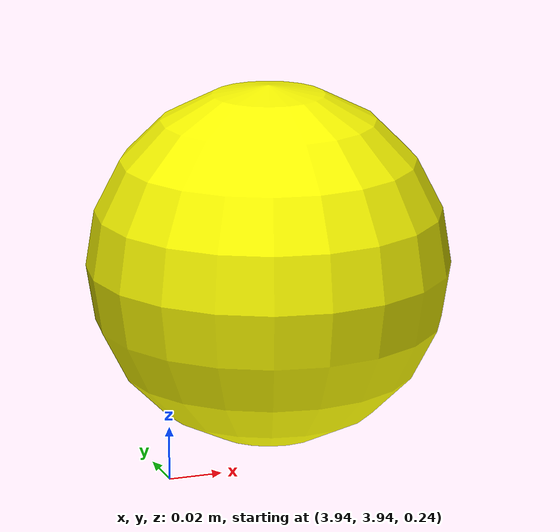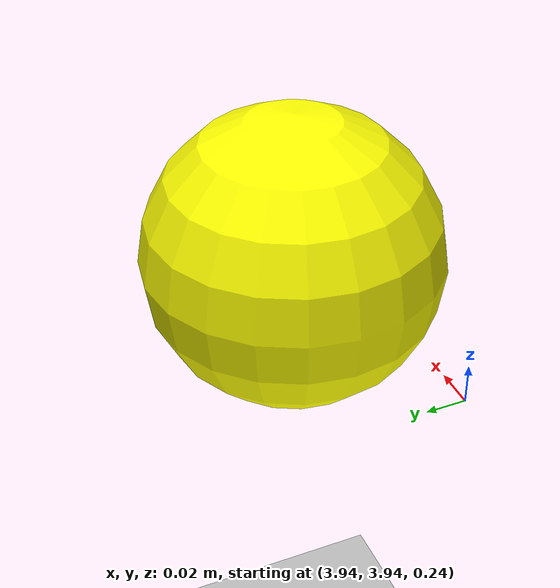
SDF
<?xml version="1.0" ?>
<sdf version='1.4'>
  <world name='default'>

    <physics type='ode'>
      <max_step_size>0.001</max_step_size>
      <real_time_factor>1</real_time_factor>
      <real_time_update_rate>1000</real_time_update_rate>
      <gravity>0 0 -9.8</gravity>
    </physics>

    <spherical_coordinates>
      <surface_model>EARTH_WGS84</surface_model>
      <latitude_deg>0</latitude_deg>
      <longitude_deg>0</longitude_deg>
      <elevation>0</elevation>
      <heading_deg>0</heading_deg>
    </spherical_coordinates>

    <!-- A global light source -->
   <scene>
      <sky>
        <clouds>
          <speed>12</speed>
        </clouds>
      </sky>
      <ambient>1.0 1.0 1.0 1</ambient>
      <background>1.0 1.0 1.0 1</background>
   </scene>

   <include>
     <uri>model://sun</uri>
   </include>

    <!-- A ground plane -->

    <include>
      <uri>model://arena</uri>
    </include>

    <model name="small_sphere_1" >
      <pose>4 4 0.2 0 0 0</pose>
      <include>
        <uri>model://small_sphere</uri>
      </include>
      <plugin name="mbzirc_gazebo_treasure_plugin_sphere_1" filename="libmbzirc_gazebo_treasure_plugin.so">
        <guardName>hawk</guardName>
        <pirateName>hydrus</pirateName>
        <treasurePositionTopicName>/treasure/point_from_gazebo</treasurePositionTopicName>
        <markerTopicName>/treasure/marker</markerTopicName>
        <grabThreshold>0.3</grabThreshold>
        <guardUavTreasureOffsetZ>1.45</guardUavTreasureOffsetZ>
        <pirateUavTreasureOffsetZ>0.03</pirateUavTreasureOffsetZ>
      </plugin>
    </model>

  </world>
</sdf>

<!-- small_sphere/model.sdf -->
<sdf version='1.4'>
  <model name="small_sphere">
    <link name="link" >
      <pose>0 0 0.1 0 0 0</pose>
      <inertial>
        <mass>0.1</mass>
        <inertia>
          <!-- http://answers.gazebosim.org/question/4372/the-inertia-matrix-explained/ -->
          <ixx>0.000225</ixx>    <!-- for a box: ixx = 0.4 * mass * r * r -->
          <ixy>0.0</ixy>         <!-- for a box: ixy = 0 -->
          <ixz>0.0</ixz>         <!-- for a box: ixz = 0 -->
          <iyy>0.000225</iyy>    <!-- for a box: iyy = 0.4 * mass * r * r -->
          <iyz>0.0</iyz>         <!-- for a box: iyz = 0 -->
          <izz>0.000225</izz>    <!-- for a box: izz = 0.4 * mass * r * r -->
        </inertia>
      </inertial>
      <collision name="collision">
        <geometry>
          <sphere>
            <radius>0.07</radius>
          </sphere>
        </geometry>
      </collision>
      <visual name="visual">
        <geometry>
          <sphere>
            <radius>0.07</radius>
          </sphere>
        </geometry>
        <material>
          <ambient>1.00 1.00 0.00 1</ambient> <!-- tomato -->
          <diffuse>1.00 1.00 0.00 1</diffuse>
          <specular>0.1 0.1 0.1 1</specular>
          <emissive>0 0 0 0</emissive>
        </material>
      </visual>
    </link>
  </model>
</sdf>

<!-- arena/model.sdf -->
<sdf version="1.4">
  <model name='arena'>
      <static>1</static>
      <link name='link_arena'>
        <pose>0 0 -0.1 1.5708 -0 0</pose>
        <collision name='collision'>
          <geometry>
            <mesh>
              <uri>model://arena/meshes/arena.dae</uri>
              <scale>1 0.01 1</scale>
            </mesh>
          </geometry>
          <surface>
            <friction>
              <ode>
                <mu>100</mu>
                <mu2>50</mu2>
              </ode>
            </friction>
          <bounce>
            <restitution_coefficient>0</restitution_coefficient>
            <threshold>1e+06</threshold>
          </bounce>
          <contact>
            <collide_without_contact>0</collide_without_contact>
            <collide_without_contact_bitmask>1</collide_without_contact_bitmask>
            <ode>
              <soft_cfm>0</soft_cfm>
              <soft_erp>0.2</soft_erp>
              <kp>1e+13</kp>
              <kd>1</kd>
              <max_vel>0.01</max_vel>
              <min_depth>0</min_depth>
            </ode>
            <bullet>
              <split_impulse>1</split_impulse>
              <split_impulse_penetration_threshold>-0.01</split_impulse_penetration_threshold>
              <soft_cfm>0</soft_cfm>
              <soft_erp>0.2</soft_erp>
              <kp>1e+13</kp>
              <kd>1</kd>
            </bullet>
          </contact>
          </surface>
          <max_contacts>10</max_contacts>
          <laser_retro>0</laser_retro>
        </collision>
        <visual name='visual'>
          <cast_shadows>1</cast_shadows>
          <transparency>0</transparency>
          <geometry>
            <mesh>
              <uri>model://arena/meshes/arena.dae</uri>
              <scale>1 0.01 1</scale>
            </mesh>
          </geometry>
        </visual>
        <velocity_decay>
          <linear>0</linear>
          <angular>0</angular>
        </velocity_decay>
        <self_collide>0</self_collide>
        <kinematic>0</kinematic>
        <gravity>1</gravity>
      </link>
  </model>
</sdf>
